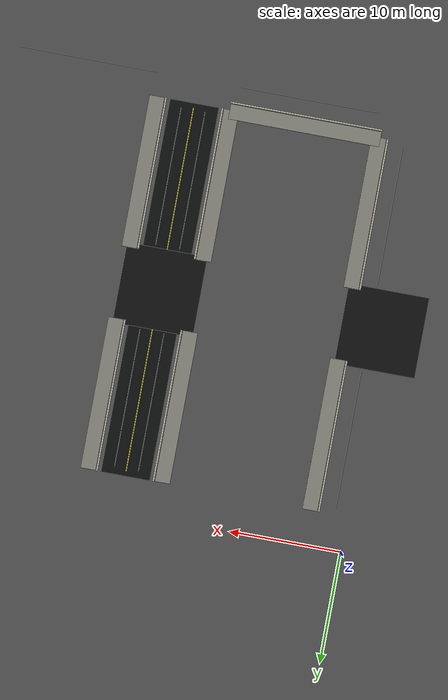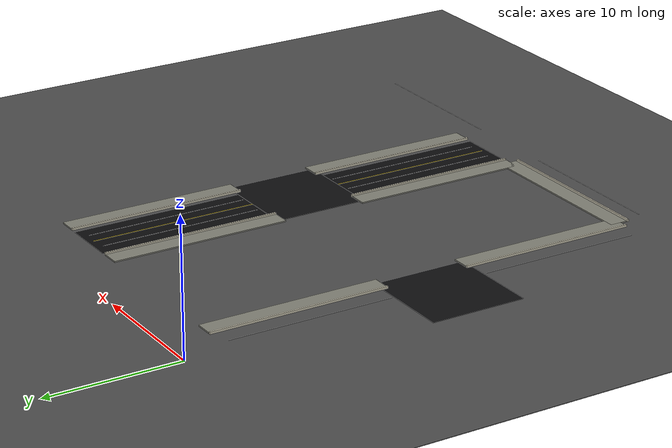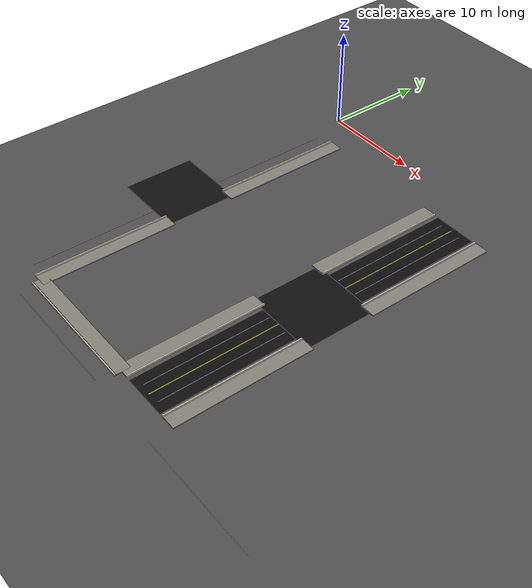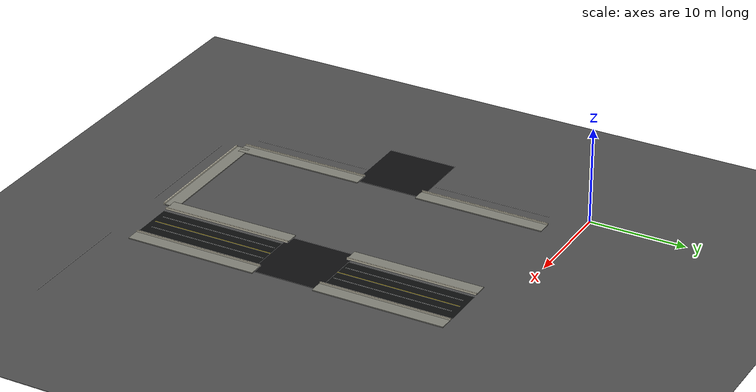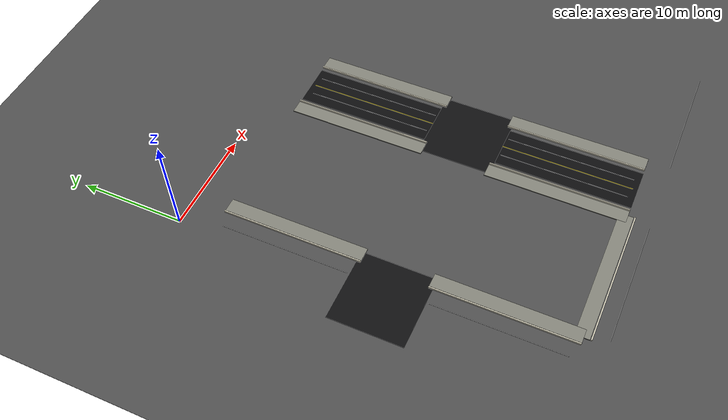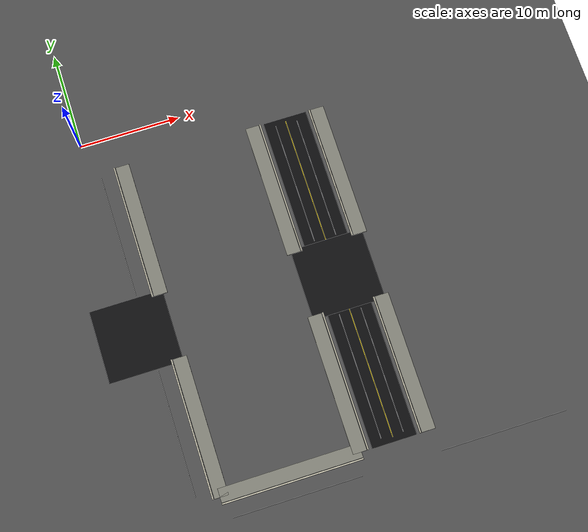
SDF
<sdf version="1.9">
 <world name="smart_city_world">
  <model name="ground">
   <static>true</static>
   <link name="link">
    <collision name="collision"><geometry><box><size>145 145 0.05</size></box></geometry></collision>
    <visual name="visual">
     <geometry><box><size>145 145 0.05</size></box></geometry>
     <material><ambient>0.30 0.30 0.30 1</ambient><diffuse>0.30 0.30 0.30 1</diffuse></material>
    </visual>
   </link>
  </model>
  <model name="sidewalk_e19_L">
   <static>true</static>
   <pose>10.000 -36.650 0.075 0 0 0.000000</pose>
   <link name="link">
    <visual name="visual">
     <geometry><box><size>13.600 1.350 0.100</size></box></geometry>
     <material><ambient>0.5 0.5 0.46 1</ambient><diffuse>0.5 0.5 0.46 1</diffuse></material>
    </visual>
   </link>
  </model>
  <model name="curb_e19_L">
   <static>true</static>
   <pose>10.000 -37.450 0.130 0 0 0.000000</pose>
   <link name="link">
    <visual name="visual">
     <geometry><box><size>13.600 0.120 0.180</size></box></geometry>
     <material><ambient>0.8 0.78 0.7 1</ambient><diffuse>0.8 0.78 0.7 1</diffuse></material>
    </visual>
   </link>
  </model>
  <model name="edge_line_e19_L">
   <static>true</static>
   <pose>10.000 -38.920 0.054 0 0 0.000000</pose>
   <link name="link">
    <visual name="visual">
     <geometry><box><size>12.400 0.035 0.010</size></box></geometry>
     <material><ambient>0.85 0.85 0.85 1</ambient><diffuse>0.85 0.85 0.85 1</diffuse></material>
    </visual>
   </link>
  </model>
  <model name="edge_line_e20_L">
   <static>true</static>
   <pose>30.000 -38.920 0.054 0 0 0.000000</pose>
   <link name="link">
    <visual name="visual">
     <geometry><box><size>12.400 0.035 0.010</size></box></geometry>
     <material><ambient>0.85 0.85 0.85 1</ambient><diffuse>0.85 0.85 0.85 1</diffuse></material>
    </visual>
   </link>
  </model>
  <model name="sidewalk_e31_L">
   <static>true</static>
   <pose>3.350 -10.000 0.075 0 0 -1.570796</pose>
   <link name="link">
    <visual name="visual">
     <geometry><box><size>13.600 1.350 0.100</size></box></geometry>
     <material><ambient>0.5 0.5 0.46 1</ambient><diffuse>0.5 0.5 0.46 1</diffuse></material>
    </visual>
   </link>
  </model>
  <model name="curb_e31_L">
   <static>true</static>
   <pose>2.550 -10.000 0.130 0 0 -1.570796</pose>
   <link name="link">
    <visual name="visual">
     <geometry><box><size>13.600 0.120 0.180</size></box></geometry>
     <material><ambient>0.8 0.78 0.7 1</ambient><diffuse>0.8 0.78 0.7 1</diffuse></material>
    </visual>
   </link>
  </model>
  <model name="edge_line_e31_L">
   <static>true</static>
   <pose>1.080 -10.000 0.054 0 0 -1.570796</pose>
   <link name="link">
    <visual name="visual">
     <geometry><box><size>12.400 0.035 0.010</size></box></geometry>
     <material><ambient>0.85 0.85 0.85 1</ambient><diffuse>0.85 0.85 0.85 1</diffuse></material>
    </visual>
   </link>
  </model>
  <model name="sidewalk_e32_L">
   <static>true</static>
   <pose>3.350 -30.000 0.075 0 0 -1.570796</pose>
   <link name="link">
    <visual name="visual">
     <geometry><box><size>13.600 1.350 0.100</size></box></geometry>
     <material><ambient>0.5 0.5 0.46 1</ambient><diffuse>0.5 0.5 0.46 1</diffuse></material>
    </visual>
   </link>
  </model>
  <model name="curb_e32_L">
   <static>true</static>
   <pose>2.550 -30.000 0.130 0 0 -1.570796</pose>
   <link name="link">
    <visual name="visual">
     <geometry><box><size>13.600 0.120 0.180</size></box></geometry>
     <material><ambient>0.8 0.78 0.7 1</ambient><diffuse>0.8 0.78 0.7 1</diffuse></material>
    </visual>
   </link>
  </model>
  <model name="edge_line_e32_L">
   <static>true</static>
   <pose>1.080 -30.000 0.054 0 0 -1.570796</pose>
   <link name="link">
    <visual name="visual">
     <geometry><box><size>12.400 0.035 0.010</size></box></geometry>
     <material><ambient>0.85 0.85 0.85 1</ambient><diffuse>0.85 0.85 0.85 1</diffuse></material>
    </visual>
   </link>
  </model>
  <model name="road_e35">
   <static>true</static>
   <pose>20.000 -10.000 0.018 0 0 -1.570796</pose>
   <link name="link">
    <collision name="collision"><geometry><box><size>13.600 4.350 0.030</size></box></geometry></collision>
    <visual name="visual">
     <geometry><box><size>13.600 4.350 0.030</size></box></geometry>
     <material><ambient>0.045 0.047 0.05 1</ambient><diffuse>0.045 0.047 0.05 1</diffuse></material>
    </visual>
   </link>
  </model>
  <model name="center_line_e35">
   <static>true</static>
   <pose>20.000 -10.000 0.052 0 0 -1.570796</pose>
   <link name="link">
    <visual name="visual">
     <geometry><box><size>12.800 0.070 0.010</size></box></geometry>
     <material><ambient>1 0.86 0.05 1</ambient><diffuse>1 0.86 0.05 1</diffuse></material>
    </visual>
   </link>
  </model>
  <model name="sidewalk_e35_L">
   <static>true</static>
   <pose>23.350 -10.000 0.075 0 0 -1.570796</pose>
   <link name="link">
    <visual name="visual">
     <geometry><box><size>13.600 1.350 0.100</size></box></geometry>
     <material><ambient>0.5 0.5 0.46 1</ambient><diffuse>0.5 0.5 0.46 1</diffuse></material>
    </visual>
   </link>
  </model>
  <model name="curb_e35_L">
   <static>true</static>
   <pose>22.550 -10.000 0.130 0 0 -1.570796</pose>
   <link name="link">
    <visual name="visual">
     <geometry><box><size>13.600 0.120 0.180</size></box></geometry>
     <material><ambient>0.8 0.78 0.7 1</ambient><diffuse>0.8 0.78 0.7 1</diffuse></material>
    </visual>
   </link>
  </model>
  <model name="edge_line_e35_L">
   <static>true</static>
   <pose>21.080 -10.000 0.054 0 0 -1.570796</pose>
   <link name="link">
    <visual name="visual">
     <geometry><box><size>12.400 0.035 0.010</size></box></geometry>
     <material><ambient>0.85 0.85 0.85 1</ambient><diffuse>0.85 0.85 0.85 1</diffuse></material>
    </visual>
   </link>
  </model>
  <model name="sidewalk_e35_R">
   <static>true</static>
   <pose>16.650 -10.000 0.075 0 0 -1.570796</pose>
   <link name="link">
    <visual name="visual">
     <geometry><box><size>13.600 1.350 0.100</size></box></geometry>
     <material><ambient>0.5 0.5 0.46 1</ambient><diffuse>0.5 0.5 0.46 1</diffuse></material>
    </visual>
   </link>
  </model>
  <model name="curb_e35_R">
   <static>true</static>
   <pose>17.450 -10.000 0.130 0 0 -1.570796</pose>
   <link name="link">
    <visual name="visual">
     <geometry><box><size>13.600 0.120 0.180</size></box></geometry>
     <material><ambient>0.8 0.78 0.7 1</ambient><diffuse>0.8 0.78 0.7 1</diffuse></material>
    </visual>
   </link>
  </model>
  <model name="edge_line_e35_R">
   <static>true</static>
   <pose>18.920 -10.000 0.054 0 0 -1.570796</pose>
   <link name="link">
    <visual name="visual">
     <geometry><box><size>12.400 0.035 0.010</size></box></geometry>
     <material><ambient>0.85 0.85 0.85 1</ambient><diffuse>0.85 0.85 0.85 1</diffuse></material>
    </visual>
   </link>
  </model>
  <model name="road_e36">
   <static>true</static>
   <pose>20.000 -30.000 0.018 0 0 -1.570796</pose>
   <link name="link">
    <collision name="collision"><geometry><box><size>13.600 4.350 0.030</size></box></geometry></collision>
    <visual name="visual">
     <geometry><box><size>13.600 4.350 0.030</size></box></geometry>
     <material><ambient>0.045 0.047 0.05 1</ambient><diffuse>0.045 0.047 0.05 1</diffuse></material>
    </visual>
   </link>
  </model>
  <model name="center_line_e36">
   <static>true</static>
   <pose>20.000 -30.000 0.052 0 0 -1.570796</pose>
   <link name="link">
    <visual name="visual">
     <geometry><box><size>12.800 0.070 0.010</size></box></geometry>
     <material><ambient>1 0.86 0.05 1</ambient><diffuse>1 0.86 0.05 1</diffuse></material>
    </visual>
   </link>
  </model>
  <model name="sidewalk_e36_L">
   <static>true</static>
   <pose>23.350 -30.000 0.075 0 0 -1.570796</pose>
   <link name="link">
    <visual name="visual">
     <geometry><box><size>13.600 1.350 0.100</size></box></geometry>
     <material><ambient>0.5 0.5 0.46 1</ambient><diffuse>0.5 0.5 0.46 1</diffuse></material>
    </visual>
   </link>
  </model>
  <model name="curb_e36_L">
   <static>true</static>
   <pose>22.550 -30.000 0.130 0 0 -1.570796</pose>
   <link name="link">
    <visual name="visual">
     <geometry><box><size>13.600 0.120 0.180</size></box></geometry>
     <material><ambient>0.8 0.78 0.7 1</ambient><diffuse>0.8 0.78 0.7 1</diffuse></material>
    </visual>
   </link>
  </model>
  <model name="edge_line_e36_L">
   <static>true</static>
   <pose>21.080 -30.000 0.054 0 0 -1.570796</pose>
   <link name="link">
    <visual name="visual">
     <geometry><box><size>12.400 0.035 0.010</size></box></geometry>
     <material><ambient>0.85 0.85 0.85 1</ambient><diffuse>0.85 0.85 0.85 1</diffuse></material>
    </visual>
   </link>
  </model>
  <model name="sidewalk_e36_R">
   <static>true</static>
   <pose>16.650 -30.000 0.075 0 0 -1.570796</pose>
   <link name="link">
    <visual name="visual">
     <geometry><box><size>13.600 1.350 0.100</size></box></geometry>
     <material><ambient>0.5 0.5 0.46 1</ambient><diffuse>0.5 0.5 0.46 1</diffuse></material>
    </visual>
   </link>
  </model>
  <model name="curb_e36_R">
   <static>true</static>
   <pose>17.450 -30.000 0.130 0 0 -1.570796</pose>
   <link name="link">
    <visual name="visual">
     <geometry><box><size>13.600 0.120 0.180</size></box></geometry>
     <material><ambient>0.8 0.78 0.7 1</ambient><diffuse>0.8 0.78 0.7 1</diffuse></material>
    </visual>
   </link>
  </model>
  <model name="edge_line_e36_R">
   <static>true</static>
   <pose>18.920 -30.000 0.054 0 0 -1.570796</pose>
   <link name="link">
    <visual name="visual">
     <geometry><box><size>12.400 0.035 0.010</size></box></geometry>
     <material><ambient>0.85 0.85 0.85 1</ambient><diffuse>0.85 0.85 0.85 1</diffuse></material>
    </visual>
   </link>
  </model>
  <model name="intersection_plate_n19">
   <static>true</static>
   <pose>20.000 -20.000 0.025 0 0 0.000000</pose>
   <link name="link">
    <collision name="collision"><geometry><box><size>7.200 7.200 0.035</size></box></geometry></collision>
    <visual name="visual">
     <geometry><box><size>7.200 7.200 0.035</size></box></geometry>
     <material><ambient>0.055 0.055 0.058 1</ambient><diffuse>0.055 0.055 0.058 1</diffuse></material>
    </visual>
   </link>
  </model>
  <model name="intersection_plate_n18">
   <static>true</static>
   <pose>0.000 -20.000 0.025 0 0 0.000000</pose>
   <link name="link">
    <collision name="collision"><geometry><box><size>7.200 7.200 0.035</size></box></geometry></collision>
    <visual name="visual">
     <geometry><box><size>7.200 7.200 0.035</size></box></geometry>
     <material><ambient>0.055 0.055 0.058 1</ambient><diffuse>0.055 0.055 0.058 1</diffuse></material>
    </visual>
   </link>
  </model>
 </world>
</sdf>
